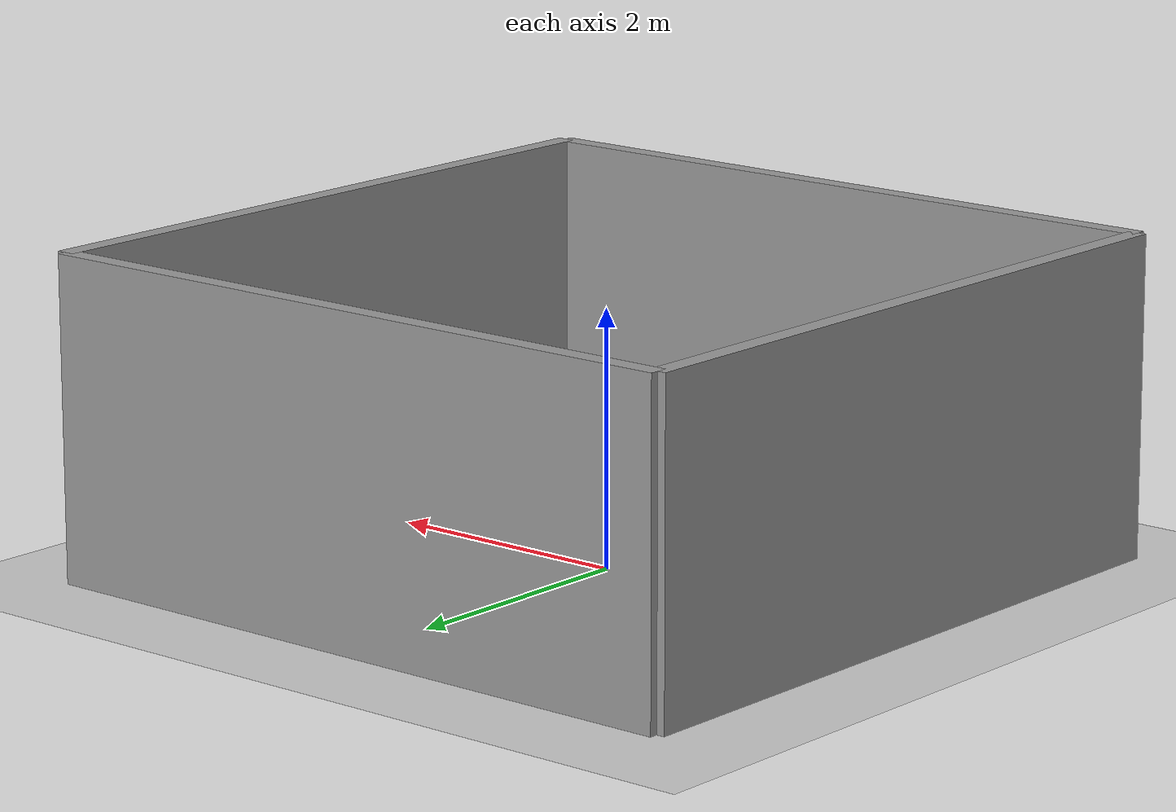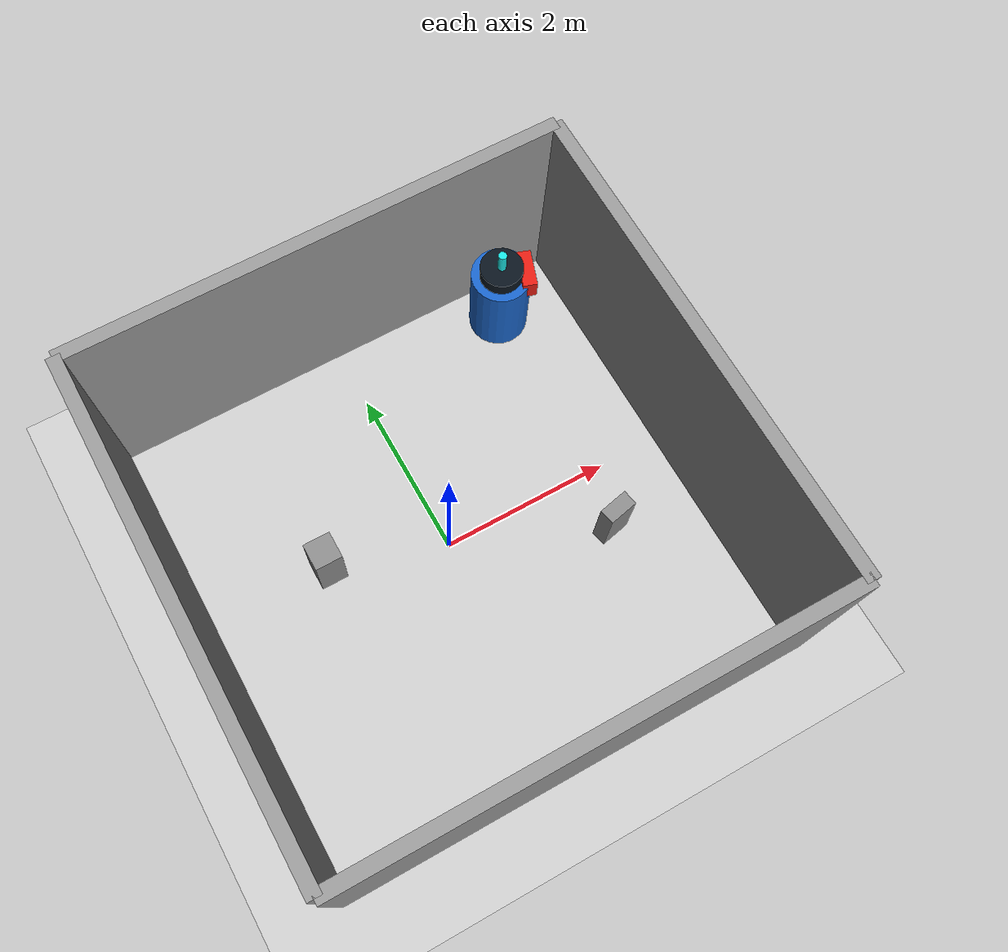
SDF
<sdf version="1.7">
 <world name="default">
  <plugin name="socnav_plugin" filename="libSocNavPlugin.so">
   <robot_name>robot</robot_name>
   <trajectory_file>/home/hunav_gz_classic_ws/SocNav3_trajectories/src6/000003920.json</trajectory_file>
   <human_slots>1</human_slots>
   <goal_angle_mesh>
    <angle_threshold>2.99935481102</angle_threshold>
    <uri>/home/hunav_gz_classic_ws/src/socnav_gazebo_reproducer/meshes/000003920_goal_angle_00.stl</uri>
   </goal_angle_mesh>
  </plugin>
  <light name="sun" type="directional">
   <pose>0 0 10 0 -0 0</pose>
   <diffuse>0.8 0.8 0.8 1</diffuse>
   <specular>0.2 0.2 0.2 1</specular>
   <attenuation>
    <range>1000</range>
    <constant>0.9</constant>
    <linear>0.01</linear>
    <quadratic>0.001</quadratic>
   </attenuation>
   <direction>-0.5 0.1 -0.9</direction>
   <spot><inner_angle>0</inner_angle><outer_angle>0</outer_angle><falloff>0</falloff></spot>
  </light>
  <model name="ground_plane">
   <static>1</static>
   <link name="link">
    <collision name="collision">
     <geometry><plane><normal>0 0 1</normal><size>100 100</size></plane></geometry>
     <surface><friction><ode><mu>100</mu><mu2>50</mu2></ode></friction></surface>
    </collision>
    <visual name="visual">
     <cast_shadows>0</cast_shadows>
     <geometry><plane><normal>0 0 1</normal><size>100 100</size></plane></geometry>
     <material>
      <script><uri>file://media/materials/scripts/kitchen.material</uri><name>Kitchen/CounterTop_H</name></script>
     </material>
    </visual>
   </link>
  </model>
  <gravity>0 0 -9.8</gravity>
  <magnetic_field>6e-06 2.3e-05 -4.2e-05</magnetic_field>
  <atmosphere type="adiabatic"/>
  <physics type="ode">
   <max_step_size>0.001</max_step_size>
   <real_time_factor>1</real_time_factor>
   <real_time_update_rate>1000</real_time_update_rate>
  </physics>
  <scene><ambient>0.4 0.4 0.4 1</ambient><background>0.7 0.7 0.7 1</background><shadows>1</shadows></scene>
  <audio><device>default</device></audio>
  <spherical_coordinates>
   <surface_model>EARTH_WGS84</surface_model>
   <latitude_deg>0</latitude_deg>
   <longitude_deg>0</longitude_deg>
   <elevation>0</elevation>
   <heading_deg>0</heading_deg>
  </spherical_coordinates>
  <model name="robot">
   <pose>1.9078888247648722 2.2501114751474427 0.5 0 0 -0.33324169183945296</pose>
   <link name="link">
    <collision name="collision">
     <geometry><cylinder><radius>0.34537481221101335</radius><length>1.0</length></cylinder></geometry>
    </collision>
    <visual name="visual">
     <geometry><cylinder><radius>0.34537481221101335</radius><length>1.0</length></cylinder></geometry>
     <material><ambient>0.1 0.4 0.8 1</ambient><diffuse>0.1 0.4 0.8 1</diffuse></material>
    </visual>
    <visual name="robot_top">
     <pose>0 0 0.58 0 0 0</pose>
     <geometry><cylinder><radius>0.2486698647919296</radius><length>0.16</length></cylinder></geometry>
     <material><ambient>0.04 0.08 0.12 1</ambient><diffuse>0.04 0.08 0.12 1</diffuse></material>
    </visual>
    <visual name="robot_front">
     <pose>0.2901148422572512 0 0.44 0 0 0</pose>
     <geometry><box><size>0.1657799098612864 0.4420797596300971 0.24</size></box></geometry>
     <material><ambient>0.9 0.12 0.08 1</ambient><diffuse>0.9 0.12 0.08 1</diffuse></material>
    </visual>
    <visual name="robot_sensor">
     <pose>0 0 0.78 0 0 0</pose>
     <geometry><cylinder><radius>0.04835247370954188</radius><length>0.24</length></cylinder></geometry>
     <material><ambient>0.1 0.9 0.9 1</ambient><diffuse>0.1 0.9 0.9 1</diffuse></material>
    </visual>
   </link>
  </model>
  <model name="static_object_0">
   <static>true</static>
   <pose>1.685545741046518 -0.7025711146805945 0.375 0 0 3.351593974046886</pose>
   <link name="link">
    <collision name="collision"><geometry><box><size>0.35 0.18 0.75</size></box></geometry></collision>
    <visual name="visual">
     <geometry><box><size>0.35 0.18 0.75</size></box></geometry>
     <material><ambient>0.55 0.55 0.55 1</ambient><diffuse>0.55 0.55 0.55 1</diffuse></material>
    </visual>
   </link>
  </model>
  <model name="static_object_3">
   <static>true</static>
   <pose>-1.3186712309484794 0.3867307086849827 0.375 0 0 0</pose>
   <link name="link">
    <collision name="collision">
     <geometry><box><size>0.315090036851384 0.315090036851384 0.75</size></box></geometry>
    </collision>
    <visual name="visual">
     <geometry><box><size>0.315090036851384 0.315090036851384 0.75</size></box></geometry>
     <material><ambient>0.55 0.55 0.55 1</ambient><diffuse>0.55 0.55 0.55 1</diffuse></material>
    </visual>
   </link>
  </model>
  <model name="simple_world_test">
   <link name="Wall_0">
    <collision name="Wall_0_Collision">
     <geometry><box><size>5.59514682785885 0.15 2.5</size></box></geometry>
     <pose>0 0 1.25 0 -0 0</pose>
    </collision>
    <visual name="Wall_0_Visual">
     <pose>0 0 1.25 0 -0 0</pose>
     <geometry><box><size>5.59514682785885 0.15 2.5</size></box></geometry>
     <material>
      <script><uri>file://media/materials/scripts/gazebo.material</uri><name>Gazebo/Grey</name></script>
      <ambient>1 1 1 1</ambient>
     </material>
     <meta><layer>0</layer></meta>
    </visual>
    <pose>2.787573413929425 0.0 0 0 -0 -1.5707963267948966</pose>
   </link>
   <link name="Wall_1">
    <collision name="Wall_1_Collision">
     <geometry><box><size>5.59514682785885 0.15 2.5</size></box></geometry>
     <pose>0 0 1.25 0 -0 0</pose>
    </collision>
    <visual name="Wall_1_Visual">
     <pose>0 0 1.25 0 -0 0</pose>
     <geometry><box><size>5.59514682785885 0.15 2.5</size></box></geometry>
     <material>
      <script><uri>file://media/materials/scripts/gazebo.material</uri><name>Gazebo/Grey</name></script>
      <ambient>1 1 1 1</ambient>
     </material>
     <meta><layer>0</layer></meta>
    </visual>
    <pose>0.0 -2.787573413929425 0 0 -0 -3.141592653589793</pose>
   </link>
   <link name="Wall_2">
    <collision name="Wall_2_Collision">
     <geometry><box><size>5.59514682785885 0.15 2.5</size></box></geometry>
     <pose>0 0 1.25 0 -0 0</pose>
    </collision>
    <visual name="Wall_2_Visual">
     <pose>0 0 1.25 0 -0 0</pose>
     <geometry><box><size>5.59514682785885 0.15 2.5</size></box></geometry>
     <material>
      <script><uri>file://media/materials/scripts/gazebo.material</uri><name>Gazebo/Grey</name></script>
      <ambient>1 1 1 1</ambient>
     </material>
     <meta><layer>0</layer></meta>
    </visual>
    <pose>-2.787573413929425 0.0 0 0 -0 1.5707963267948966</pose>
   </link>
   <link name="Wall_3">
    <collision name="Wall_3_Collision">
     <geometry><box><size>5.59514682785885 0.15 2.5</size></box></geometry>
     <pose>0 0 1.25 0 -0 0</pose>
    </collision>
    <visual name="Wall_3_Visual">
     <pose>0 0 1.25 0 -0 0</pose>
     <geometry><box><size>5.59514682785885 0.15 2.5</size></box></geometry>
     <material>
      <script><uri>file://media/materials/scripts/gazebo.material</uri><name>Gazebo/Grey</name></script>
      <ambient>1 1 1 1</ambient>
     </material>
     <meta><layer>0</layer></meta>
    </visual>
    <pose>0.0 2.787573413929425 0 0 -0 0.0</pose>
   </link>
   <static>1</static>
  </model>
 </world>
</sdf>
